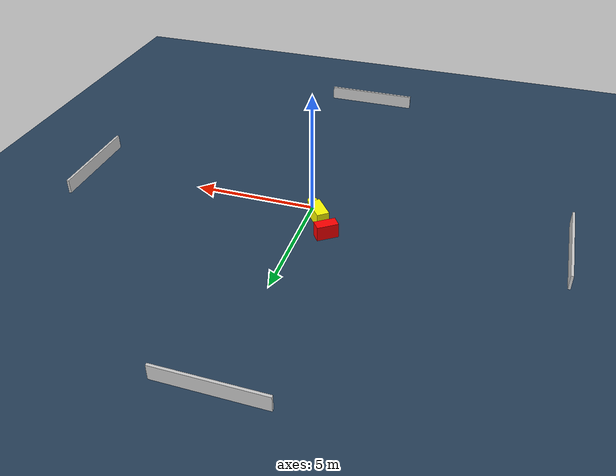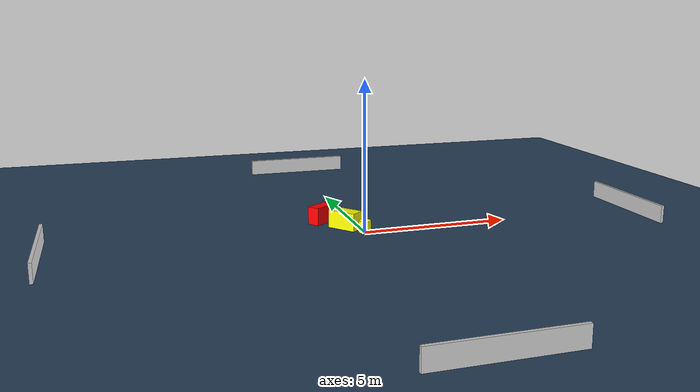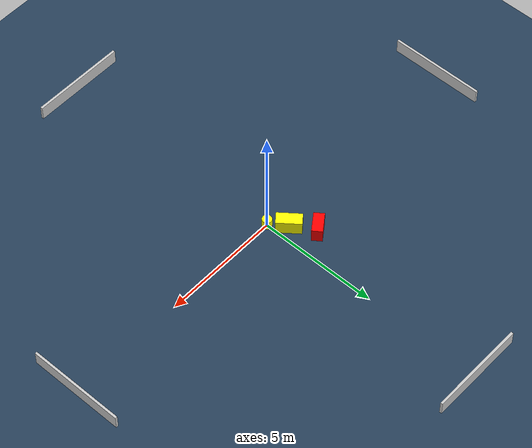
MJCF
<?xml version="1.0" ?>
<mujoco model="generated_environment">
  <option timestep="0.01" integrator="RK4" cone="elliptic"/>
  <default>
    <geom density="1"/>
  </default>
  <asset>
    <texture builtin="gradient" height="3072" name="skybox" rgb1="0.3 0.5 0.7" rgb2="0 0 0" type="skybox" width="512"/>
    <texture builtin="checker" height="300" name="groundplane" rgb1="0.2 0.3 0.4" rgb2="0.1 0.2 0.3" type="2d" width="300"/>
    <material name="groundplane" reflectance="0.2" texrepeat="5 5" texture="groundplane"/>
  </asset>
  <worldbody>
    <light dir="0 0 -1" directional="true" pos="0 0 1.5"/>
    <geom condim="3" friction="0.5 0.005 0.001" material="groundplane" name="floor" pos="0 0 0" size="0 0 0.05" type="plane"/>
    <body name="walls">
      <geom name="wall_1" condim="4" pos="-10.0 0.0 0.3" rgba="0.800000011920929 0.800000011920929 0.800000011920929 1.0" size="0.05 2.0 0.3" type="box"/>
      <geom name="wall_2" condim="4" pos="10.0 0.0 0.3" rgba="0.800000011920929 0.800000011920929 0.800000011920929 1.0" size="0.05 2.0 0.3" type="box"/>
      <geom name="wall_3" condim="4" pos="0.0 -10.0 0.3" rgba="0.800000011920929 0.800000011920929 0.800000011920929 1.0" size="2.0 0.05 0.3" type="box"/>
      <geom name="wall_4" condim="4" pos="0.0 10.0 0.3" rgba="0.800000011920929 0.800000011920929 0.800000011920929 1.0" size="2.0 0.05 0.3" type="box"/>
    </body>
    <body name="robot">
      <joint name="joint_x" type="slide" pos="0 0 0" axis="1 0 0"/>
      <joint name="joint_y" type="slide" pos="0 0 0" axis="0 1 0"/>
      <geom name="robot" type="cylinder" pos="0.0 0.0 0.2" size="0.2 0.2 0.0" mass="5.0" friction="1.0 0.005 0.0001" condim="4" rgba="1.0 1.0 0.0 1.0"/>
    </body>
    <body name="obstacle_1_movable">
      <geom name="obstacle_1_movable" condim="4" pos="-0.46283691985616626 0.689373770522083 0.3" euler="0 0 308.48862928723037" friction="0.0 0.005 0.001" rgba="1.0 1.0 0.0 1.0" size="0.5076234606180565 0.24942729808879766 0.3" type="box" mass="0.1"/>
      <joint type="free"/>
    </body>
    <body name="obstacle_2_static">
      <geom name="obstacle_2_static" condim="4" pos="-1.0543577677906617 1.6059359044328247 0.3" euler="0 0 125.70372808244095" friction="0.0 0.005 0.001" rgba="1.0 0.0 0.0 1.0" size="0.21691973992986285 0.43050293797703365 0.3" type="box"/>
    </body>
  </worldbody>
  <actuator>
    <motor name="actuator_x" joint="joint_x" gear="1" ctrlrange="-1 1"/>
    <motor name="actuator_y" joint="joint_y" gear="1" ctrlrange="-1 1"/>
  </actuator>
</mujoco>
